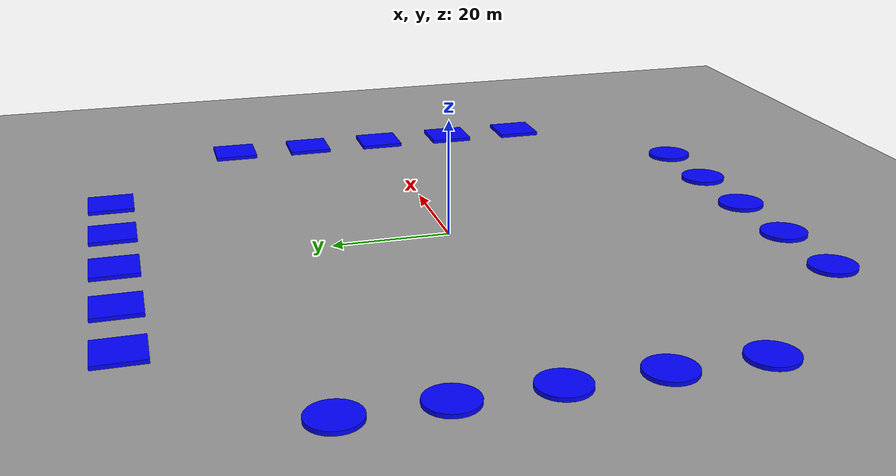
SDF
<sdf version="1.9">
 <world name="default">
  <physics type="ode">
   <max_step_size>0.01</max_step_size>
   <real_time_update_rate>60</real_time_update_rate>
  </physics>
  <model name="ground_plane">
   <static>true</static>
   <link name="link">
    <collision name="collision">
     <geometry><plane><normal>0 0 1</normal><size>100 100</size></plane></geometry>
     <surface><contact><collide_without_contact_bitmask>0x01</collide_without_contact_bitmask></contact></surface>
    </collision>
    <visual name="visual">
     <geometry><plane><normal>0 0 1</normal><size>100 100</size></plane></geometry>
     <material><ambient>0.6 0.6 0.6 1</ambient><diffuse>0.6 0.6 0.6 1</diffuse></material>
    </visual>
   </link>
  </model>
  <model name="moving_cylinder_1">
   <pose>-55.0 30.0 0 0 0 0</pose>
   <link name="moving_link">
    <gravity>false</gravity>
    <visual name="visual">
     <geometry><cylinder><radius>4.0</radius><length>1.0</length></cylinder></geometry>
     <material><ambient>0 0 1 1</ambient></material>
    </visual>
   </link>
   <motion>
    <link_name>moving_link</link_name>
    <direction>1 0 0</direction>
    <amplitude>110.0</amplitude>
    <speed>36.5645</speed>
    <turnaround_threshold>0.5</turnaround_threshold>
   </motion>
  </model>
  <model name="moving_cylinder_2">
   <pose>-55.0 15.0 0 0 0 0</pose>
   <link name="moving_link">
    <gravity>false</gravity>
    <visual name="visual">
     <geometry><cylinder><radius>4.0</radius><length>1.0</length></cylinder></geometry>
     <material><ambient>0 0 1 1</ambient></material>
    </visual>
   </link>
   <motion>
    <link_name>moving_link</link_name>
    <direction>1 0 0</direction>
    <amplitude>110.0</amplitude>
    <speed>39.5959</speed>
    <turnaround_threshold>0.5</turnaround_threshold>
   </motion>
  </model>
  <model name="moving_cylinder_3">
   <pose>-55.0 0.0 0 0 0 0</pose>
   <link name="moving_link">
    <gravity>false</gravity>
    <visual name="visual">
     <geometry><cylinder><radius>4.0</radius><length>1.0</length></cylinder></geometry>
     <material><ambient>0 0 1 1</ambient></material>
    </visual>
   </link>
   <motion>
    <link_name>moving_link</link_name>
    <direction>1 0 0</direction>
    <amplitude>110.0</amplitude>
    <speed>32.1200</speed>
    <turnaround_threshold>0.5</turnaround_threshold>
   </motion>
  </model>
  <model name="moving_cylinder_4">
   <pose>-55.0 -15 0 0 0 0</pose>
   <link name="moving_link">
    <gravity>false</gravity>
    <visual name="visual">
     <geometry><cylinder><radius>4.0</radius><length>1.0</length></cylinder></geometry>
     <material><ambient>0 0 1 1</ambient></material>
    </visual>
   </link>
   <motion>
    <link_name>moving_link</link_name>
    <direction>1 0 0</direction>
    <amplitude>110.0</amplitude>
    <speed>34.9516</speed>
    <turnaround_threshold>0.5</turnaround_threshold>
   </motion>
  </model>
  <model name="moving_cylinder_5">
   <pose>-55.0 -30 0 0 0 0</pose>
   <link name="moving_link">
    <gravity>false</gravity>
    <visual name="visual">
     <geometry><cylinder><radius>4.0</radius><length>1.0</length></cylinder></geometry>
     <material><ambient>0 0 1 1</ambient></material>
    </visual>
   </link>
   <motion>
    <link_name>moving_link</link_name>
    <direction>1 0 0</direction>
    <amplitude>110.0</amplitude>
    <speed>34.3510</speed>
    <turnaround_threshold>0.5</turnaround_threshold>
   </motion>
  </model>
  <model name="moving_cylinder_6">
   <pose>-30.0 -55.0 0 0 0 0</pose>
   <link name="moving_link">
    <gravity>false</gravity>
    <visual name="visual">
     <geometry><cylinder><radius>4.0</radius><length>1.0</length></cylinder></geometry>
     <material><ambient>0 0 1 1</ambient></material>
    </visual>
   </link>
   <motion>
    <link_name>moving_link</link_name>
    <direction>0 1 0</direction>
    <amplitude>110.0</amplitude>
    <speed>38.6625</speed>
    <turnaround_threshold>0.5</turnaround_threshold>
   </motion>
  </model>
  <model name="moving_cylinder_7">
   <pose>-15.0 -55.0 0 0 0 0</pose>
   <link name="moving_link">
    <gravity>false</gravity>
    <visual name="visual">
     <geometry><cylinder><radius>4.0</radius><length>1.0</length></cylinder></geometry>
     <material><ambient>0 0 1 1</ambient></material>
    </visual>
   </link>
   <motion>
    <link_name>moving_link</link_name>
    <direction>0 1 0</direction>
    <amplitude>110.0</amplitude>
    <speed>33.4594</speed>
    <turnaround_threshold>0.5</turnaround_threshold>
   </motion>
  </model>
  <model name="moving_cylinder_8">
   <pose>0.0 -55.0 0 0 0 0</pose>
   <link name="moving_link">
    <gravity>false</gravity>
    <visual name="visual">
     <geometry><cylinder><radius>4.0</radius><length>1.0</length></cylinder></geometry>
     <material><ambient>0 0 1 1</ambient></material>
    </visual>
   </link>
   <motion>
    <link_name>moving_link</link_name>
    <direction>0 1 0</direction>
    <amplitude>110.0</amplitude>
    <speed>34.0450</speed>
    <turnaround_threshold>0.5</turnaround_threshold>
   </motion>
  </model>
  <model name="moving_cylinder_9">
   <pose>15.0 -55 0 0 0 0</pose>
   <link name="moving_link">
    <gravity>false</gravity>
    <visual name="visual">
     <geometry><cylinder><radius>4.0</radius><length>1.0</length></cylinder></geometry>
     <material><ambient>0 0 1 1</ambient></material>
    </visual>
   </link>
   <motion>
    <link_name>moving_link</link_name>
    <direction>0 1 0</direction>
    <amplitude>110.0</amplitude>
    <speed>34.5947</speed>
    <turnaround_threshold>0.5</turnaround_threshold>
   </motion>
  </model>
  <model name="moving_cylinder_10">
   <pose>30.0 -55 0 0 0 0</pose>
   <link name="moving_link">
    <gravity>false</gravity>
    <visual name="visual">
     <geometry><cylinder><radius>4.0</radius><length>1.0</length></cylinder></geometry>
     <material><ambient>0 0 1 1</ambient></material>
    </visual>
   </link>
   <motion>
    <link_name>moving_link</link_name>
    <direction>0 1 0</direction>
    <amplitude>110.0</amplitude>
    <speed>36.3298</speed>
    <turnaround_threshold>0.5</turnaround_threshold>
   </motion>
  </model>
  <model name="moving_box_1">
   <pose>55.0 30.0 0 0 0 0</pose>
   <link name="moving_link">
    <gravity>false</gravity>
    <visual name="visual">
     <geometry><box><size>8.0 8.0 1.0</size></box></geometry>
     <material><ambient>0 0 1 1</ambient></material>
    </visual>
   </link>
   <motion>
    <link_name>moving_link</link_name>
    <direction>-1 0 0</direction>
    <amplitude>110.0</amplitude>
    <speed>30.4081</speed>
    <turnaround_threshold>0.5</turnaround_threshold>
   </motion>
  </model>
  <model name="moving_box_2">
   <pose>55.0 15.0 0 0 0 0</pose>
   <link name="moving_link">
    <gravity>false</gravity>
    <visual name="visual">
     <geometry><box><size>8.0 8.0 1.0</size></box></geometry>
     <material><ambient>0 0 1 1</ambient></material>
    </visual>
   </link>
   <motion>
    <link_name>moving_link</link_name>
    <direction>-1 0 0</direction>
    <amplitude>110.0</amplitude>
    <speed>38.4643</speed>
    <turnaround_threshold>0.5</turnaround_threshold>
   </motion>
  </model>
  <model name="moving_box_3">
   <pose>55.0 0.0 0 0 0 0</pose>
   <link name="moving_link">
    <gravity>false</gravity>
    <visual name="visual">
     <geometry><box><size>8.0 8.0 1.0</size></box></geometry>
     <material><ambient>0 0 1 1</ambient></material>
    </visual>
   </link>
   <motion>
    <link_name>moving_link</link_name>
    <direction>-1 0 0</direction>
    <amplitude>110.0</amplitude>
    <speed>31.2858</speed>
    <turnaround_threshold>0.5</turnaround_threshold>
   </motion>
  </model>
  <model name="moving_box_4">
   <pose>55.0 -15 0 0 0 0</pose>
   <link name="moving_link">
    <gravity>false</gravity>
    <visual name="visual">
     <geometry><box><size>8.0 8.0 1.0</size></box></geometry>
     <material><ambient>0 0 1 1</ambient></material>
    </visual>
   </link>
   <motion>
    <link_name>moving_link</link_name>
    <direction>-1 0 0</direction>
    <amplitude>110.0</amplitude>
    <speed>36.5998</speed>
    <turnaround_threshold>0.5</turnaround_threshold>
   </motion>
  </model>
  <model name="moving_box_5">
   <pose>55.0 -30 0 0 0 0</pose>
   <link name="moving_link">
    <gravity>false</gravity>
    <visual name="visual">
     <geometry><box><size>8.0 8.0 1.0</size></box></geometry>
     <material><ambient>0 0 1 1</ambient></material>
    </visual>
   </link>
   <motion>
    <link_name>moving_link</link_name>
    <direction>-1 0 0</direction>
    <amplitude>110.0</amplitude>
    <speed>33.2735</speed>
    <turnaround_threshold>0.5</turnaround_threshold>
   </motion>
  </model>
  <model name="moving_box_6">
   <pose>-30.0 55.0 0 0 0 0</pose>
   <link name="moving_link">
    <gravity>false</gravity>
    <visual name="visual">
     <geometry><box><size>8.0 8.0 1.0</size></box></geometry>
     <material><ambient>0 0 1 1</ambient></material>
    </visual>
   </link>
   <motion>
    <link_name>moving_link</link_name>
    <direction>0 -1 0</direction>
    <amplitude>110.0</amplitude>
    <speed>33.9388</speed>
    <turnaround_threshold>0.5</turnaround_threshold>
   </motion>
  </model>
  <model name="moving_box_7">
   <pose>-15.0 55.0 0 0 0 0</pose>
   <link name="moving_link">
    <gravity>false</gravity>
    <visual name="visual">
     <geometry><box><size>8.0 8.0 1.0</size></box></geometry>
     <material><ambient>0 0 1 1</ambient></material>
    </visual>
   </link>
   <motion>
    <link_name>moving_link</link_name>
    <direction>0 -1 0</direction>
    <amplitude>110.0</amplitude>
    <speed>33.0482</speed>
    <turnaround_threshold>0.5</turnaround_threshold>
   </motion>
  </model>
  <model name="moving_box_8">
   <pose>0.0 55.0 0 0 0 0</pose>
   <link name="moving_link">
    <gravity>false</gravity>
    <visual name="visual">
     <geometry><box><size>8.0 8.0 1.0</size></box></geometry>
     <material><ambient>0 0 1 1</ambient></material>
    </visual>
   </link>
   <motion>
    <link_name>moving_link</link_name>
    <direction>0 -1 0</direction>
    <amplitude>110.0</amplitude>
    <speed>31.3895</speed>
    <turnaround_threshold>0.5</turnaround_threshold>
   </motion>
  </model>
  <model name="moving_box_9">
   <pose>15.0 55 0 0 0 0</pose>
   <link name="moving_link">
    <gravity>false</gravity>
    <visual name="visual">
     <geometry><box><size>8.0 8.0 1.0</size></box></geometry>
     <material><ambient>0 0 1 1</ambient></material>
    </visual>
   </link>
   <motion>
    <link_name>moving_link</link_name>
    <direction>0 -1 0</direction>
    <amplitude>110.0</amplitude>
    <speed>36.4201</speed>
    <turnaround_threshold>0.5</turnaround_threshold>
   </motion>
  </model>
  <model name="moving_box_10">
   <pose>30.0 55 0 0 0 0</pose>
   <link name="moving_link">
    <gravity>false</gravity>
    <visual name="visual">
     <geometry><box><size>8.0 8.0 1.0</size></box></geometry>
     <material><ambient>0 0 1 1</ambient></material>
    </visual>
   </link>
   <motion>
    <link_name>moving_link</link_name>
    <direction>0 -1 0</direction>
    <amplitude>110.0</amplitude>
    <speed>35.7276</speed>
    <turnaround_threshold>0.5</turnaround_threshold>
   </motion>
  </model>
 </world>
</sdf>
